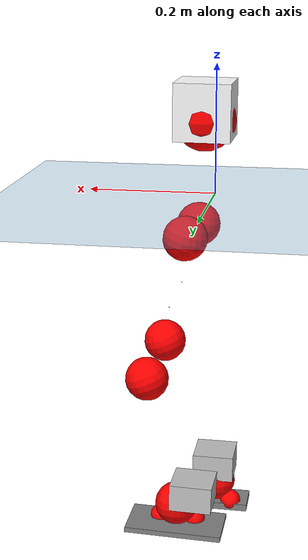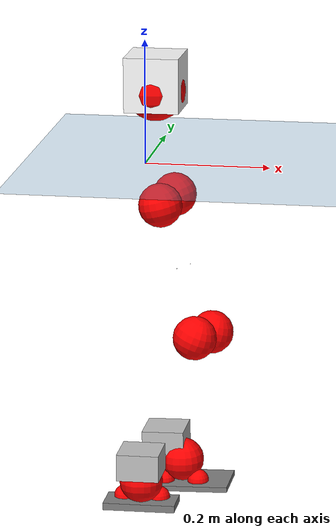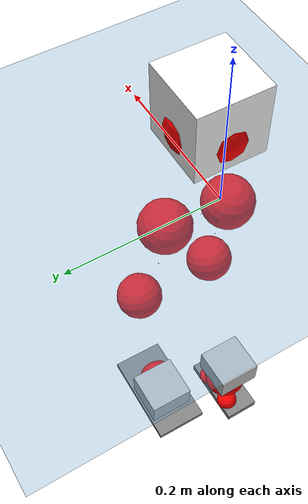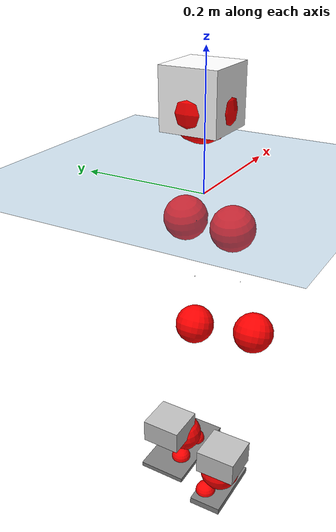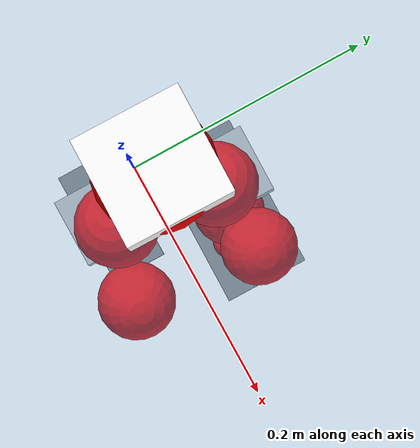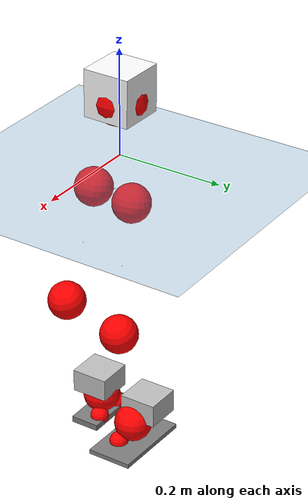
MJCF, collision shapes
<mujoco model="pi_12dof_release_v1">
  <compiler angle="radian" assetdir="assets" balanceinertia="true" inertiafromgeom="false"/>

  <option timestep="0.005" density="1.2" viscosity="2e-05"/>

  <size nkey="1"/>

  <visual>
    <quality shadowsize="8192"/>
    <map shadowclip="0.5"/>
  </visual>

  <default>
    <default class="/">
      <joint armature="0.01" damping="0.01" frictionloss="0.01"/>
      <geom contype="0" conaffinity="0" group="1" solref="-1000 -80"/>
      <site size="0.01 0.005 0.005" group="5"/>
      <general forcelimited="true" biastype="affine" gainprm="20" biasprm="0 -20 -0.5"/>
      <default class="foot">
        <geom size="0.0845 0.036 0.005" type="box" condim="6" group="4" priority="1" friction="0.9 0.2 0.2" solimp="0.015 1 0.005"/>
      </default>
      <default class="reward_collision_sphere">
        <geom group="5" rgba="1 0 0 1"/>
      </default>
    </default>
  </default>

  <asset>
    <texture type="skybox" colorspace="auto" name="//unnamed_texture_0" builtin="gradient" rgb1="0.95 0.95 0.95" rgb2="0.95 0.95 0.95" width="100" height="600"/>
    <texture type="2d" colorspace="auto" name="texplane" builtin="checker" rgb1="0.345 0.575 0.748" rgb2="0.345 0.575 0.748" markrgb="1 1 1" width="512" height="512"/>
    <material name="MatPlane" class="/" texture="texplane" texuniform="true" texrepeat="2 2" specular="0.9"/>
    <mesh name="baselink_1" class="/" file="baselink_1.STL"/>
    <mesh name="r_hip_pitch_link" class="/" file="r_hip_pitch_link.STL"/>
    <mesh name="r_hip_roll_link" class="/" file="r_hip_roll_link.STL"/>
    <mesh name="r_thigh_link" class="/" file="r_thigh_link.STL"/>
    <mesh name="r_calf_link" class="/" file="r_calf_link.STL"/>
    <mesh name="r_ankle_pitch_link" class="/" file="r_ankle_pitch_link.STL"/>
    <mesh name="r_ankle_roll_link" class="/" file="r_ankle_roll_link.STL"/>
    <mesh name="l_hip_pitch_link" class="/" file="l_hip_pitch_link.STL"/>
    <mesh name="l_hip_roll_link" class="/" file="l_hip_roll_link.STL"/>
    <mesh name="l_thigh_link" class="/" file="l_thigh_link.STL"/>
    <mesh name="l_calf_link" class="/" file="l_calf_link.STL"/>
    <mesh name="l_ankle_pitch_link" class="/" file="l_ankle_pitch_link.STL"/>
    <mesh name="l_ankle_roll_link" class="/" file="l_ankle_roll_link.STL"/>
  </asset>

  <worldbody>
    <geom name="floor" class="/" size="100 100 0.125" type="plane" group="0" material="MatPlane"/>
    <light name="toplight_shadow" class="/" pos="0 0 5" dir="0.0990148 0.0990148 -0.990148" type="directional" ambient="0.04 0.04 0.04" diffuse="0.55 0.55 0.55" specular="0.12 0.12 0.12"/>
    <light name="toplight_fill" class="/" pos="0 0 5" dir="0.0990148 0.0990148 -0.990148" type="directional" castshadow="false" ambient="0.04 0.04 0.04" diffuse="0.3 0.3 0.3" specular="0.08 0.08 0.08"/>
    <body name="trunk" pos="0.0158876 0.0116873 0.00776454" quat="0.999978 -0.00126174 -0.00285 -0.00584619">
      <inertial pos="0.0175873 0.00290882 0.0649478" quat="0.698134 0.0421816 -0.0101966 0.714651" mass="1.35804" diaginertia="0.000135359 0.00109477 0.0315152"/>
      <joint name="//unnamed_joint_0" type="free"/>
      <geom name="//unnamed_geom_1" class="/" type="mesh" density="0" rgba="1 1 1 1" mesh="baselink_1"/>
      <geom name="//unnamed_geom_2" class="/" size="0.0438445 0.0438445 0.0438445" pos="0 0 0.124371" type="box" rgba="1 1 1 1"/>
      <geom name="//unnamed_geom_3" class="reward_collision_sphere" size="0.048229" pos="0 0 0.108824"/>
      <site name="imu" class="/" pos="-0.00903444 -0.0369916 0.0308057" size="0.00876891"/>
      <camera name="track" class="/" pos="0 -1.3179 0" quat="0.707107 0.707107 0 0" mode="trackcom"/>
      <camera name="ego_camera" class="/" pos="0.0312817 0 0.279834" quat="-0.5 -0.5 0.5 0.5"/>
      <body name="r_hip_pitch_link" pos="0.0105173 -0.00454098 -0.0591639" quat="0.992078 0.00519922 -0.125375 0.0059598">
        <inertial pos="0.0171973 -0.026945 0.00917922" quat="-0.0241007 0.702644 -0.0181769 0.710901" mass="0.21521" diaginertia="1.18864e-06 1.19248e-05 0.00054479"/>
        <joint name="r_hip_pitch_joint" class="/" pos="0 0 0" axis="-0.0347715 -0.998316 -0.0464282" stiffness="0.0784119" range="-1.73876 1.11403" armature="0.00866198" damping="0.0137963" frictionloss="0.0035626"/>
        <geom name="//unnamed_geom_4" class="/" type="mesh" density="0" rgba="0.75294 0.75294 0.75294 1" mesh="r_hip_pitch_link"/>
        <geom name="//unnamed_geom_5" class="/" size="0.000438445 0.000438445 0.000438445" type="box" rgba="0.75294 0.75294 0.75294 1"/>
        <body name="r_hip_roll_link" pos="0.00136257 -0.0417202 -0.00756737" quat="1 9.27574e-05 0.000525541 0.000586052">
          <inertial pos="-0.016588 -0.00306954 -0.109161" quat="0.705341 -0.0917551 -0.0766136 0.698717" mass="0.278635" diaginertia="4.349e-06 3.16462e-05 0.0012669"/>
          <joint name="r_hip_roll_joint" class="/" pos="0 0 0" axis="-0.999998 0.00186867 -0.000878546" range="0.149424 0.3096" armature="0.0159336" damping="0.062556" frictionloss="0.00790886"/>
          <geom name="//unnamed_geom_6" class="/" type="mesh" density="0" rgba="0.75294 0.75294 0.75294 1" mesh="r_hip_roll_link"/>
          <geom name="//unnamed_geom_7" class="/" size="0.000438445 0.000438445 0.000438445" type="box" rgba="0.75294 0.75294 0.75294 1"/>
          <geom name="//unnamed_geom_8" class="reward_collision_sphere" size="0.0350756"/>
          <body name="r_thigh_link" pos="0.000940966 -0.00528328 -0.104913" quat="0.999985 -0.00478298 -0.00253951 0.00108349">
            <inertial pos="-0.0102613 -0.00868117 -0.0615883" quat="0.754258 0.653234 -0.0499483 0.043415" mass="0.0706084" diaginertia="1.72769e-06 1.04881e-05 0.000604693"/>
            <joint name="r_thigh_joint" class="/" pos="0 0 0" axis="-0.060005 -0.0237229 -0.997916" stiffness="0.0788042" range="-0.30354 0.37435" armature="0.0154579" damping="0" frictionloss="0.00989287"/>
            <geom name="//unnamed_geom_9" class="/" type="mesh" density="0" rgba="0.75294 0.75294 0.75294 1" mesh="r_thigh_link"/>
            <geom name="//unnamed_geom_10" class="/" size="0.000438445 0.000438445 0.000438445" type="box" rgba="0.75294 0.75294 0.75294 1"/>
            <body name="r_calf_link" pos="0.00149709 -0.0156023 -0.11347" quat="0.948697 0.00239364 0.316175 0.00153323">
              <inertial pos="-0.0130436 -0.0068974 -0.109703" quat="0.999982 0.00367813 -0.00186252 -0.00431952" mass="0.363842" diaginertia="4.00435e-05 0.000396384 0.00153804"/>
              <joint name="r_calf_joint" class="/" pos="0 0 0" axis="0.0035548 -0.999994 0.00011521" range="-1.59679 0.931567" armature="0.000481394" damping="0.0697462" frictionloss="0.00138703"/>
              <geom name="//unnamed_geom_11" class="/" type="mesh" density="0" rgba="0.75294 0.75294 0.75294 1" mesh="r_calf_link"/>
              <geom name="//unnamed_geom_12" class="/" size="0.000438445 0.000438445 0.000438445" type="box" rgba="0.75294 0.75294 0.75294 1"/>
              <geom name="//unnamed_geom_13" class="reward_collision_sphere" size="0.0350756"/>
              <body name="r_ankle_pitch_link" pos="-0.00240447 0.00627343 -0.232125" quat="0.981257 0.00451819 -0.192643 -0.00140525">
                <inertial pos="0.0139325 0.0189014 0.00633007" quat="0.000881259 0.720839 0.00271427 0.693096" mass="0.157013" diaginertia="4.19487e-06 3.3243e-05 0.00138367"/>
                <joint name="r_ankle_pitch_joint" class="/" pos="0 0 0" axis="0.0785033 -0.99656 -0.0265615" stiffness="0.0776423" range="-1.03383 0.247705" armature="0.0102852" damping="0.00626377" frictionloss="0.013783"/>
                <geom name="//unnamed_geom_14" class="/" type="mesh" density="0" rgba="0.75294 0.75294 0.75294 1" mesh="r_ankle_pitch_link"/>
                <geom name="//unnamed_geom_15" class="/" size="0.0341987 0.0350756 0.0219223" type="box" rgba="0.75294 0.75294 0.75294 1"/>
                <body name="r_ankle_roll_link" pos="0.0201453 0.00425264 -0.00218031" quat="1 7.87838e-05 -7.81733e-05 -2.67055e-05">
                  <inertial pos="-0.019396 0.000576369 -0.0162442" quat="0.55386 0.427707 0.423611 0.575204" mass="0.268841" diaginertia="9.81621e-06 0.00012256 0.00207936"/>
                  <joint name="r_ankle_roll_joint" class="/" pos="0 0 0" axis="-0.995973 -0.0781748 -0.0438931" range="-0.0898734 0.424088" armature="0.00724012" damping="0.0526557" frictionloss="0.0081631"/>
                  <geom name="//unnamed_geom_16" class="/" type="mesh" density="0" rgba="0.75294 0.75294 0.75294 1" mesh="r_ankle_roll_link"/>
                  <geom name="//unnamed_geom_17" class="/" type="mesh" rgba="0.75294 0.75294 0.75294 1" mesh="r_ankle_roll_link"/>
                  <geom name="right_foot" class="foot" size="0.058339 0.0278699 0.00580092" pos="-0.0212715 0 -0.0684038"/>
                  <geom name="//unnamed_geom_19" class="reward_collision_sphere" size="0.0350756" pos="-0.0208545 0 -0.0310927"/>
                  <geom name="//unnamed_geom_20" class="reward_collision_sphere" size="0.0175378" pos="0.00625634 0.013179 -0.0621853"/>
                  <geom name="//unnamed_geom_21" class="reward_collision_sphere" size="0.0175378" pos="-0.0500507 0.013179 -0.0621853"/>
                  <site name="right_foot" class="foot" pos="-0.0212715 0 -0.0684038" size="0.00876891"/>
                </body>
              </body>
            </body>
          </body>
        </body>
      </body>
      <body name="l_hip_pitch_link" pos="0.00459109 0.0106688 -0.0614133" quat="0.991187 -0.000394527 -0.132406 -0.00410508">
        <inertial pos="-0.0155667 0.0410597 -0.00369883" quat="-0.0385207 0.703543 0.02811 0.709051" mass="0.237623" diaginertia="1.58533e-06 1.07479e-05 0.000953526"/>
        <joint name="l_hip_pitch_joint" class="/" pos="0 0 0" axis="-0.00572904 0.99976 -0.0211576" stiffness="0.0354106" range="-1.44983 1.72153" armature="0.00327371" damping="0.0644816" frictionloss="0.00518828"/>
        <geom name="//unnamed_geom_22" class="/" type="mesh" density="0" rgba="0.75294 0.75294 0.75294 1" mesh="l_hip_pitch_link"/>
        <geom name="//unnamed_geom_23" class="/" size="0.000438445 0.000438445 0.000438445" type="box" rgba="0.75294 0.75294 0.75294 1"/>
        <body name="l_hip_roll_link" pos="0.0152747 0.0291832 -0.0121163" quat="0.99997 0.00632314 -0.00323018 -0.00301983">
          <inertial pos="0.000880032 0.004973 -0.0897843" quat="0.70673 -0.00628126 -0.0614627 0.70478" mass="0.304402" diaginertia="3.84393e-06 3.9723e-05 0.00105693"/>
          <joint name="l_hip_roll_joint" class="/" pos="0 0 0" axis="-0.999039 -0.0354491 -0.0257583" range="-0.36938 0.27054" armature="0.00353706" damping="0.0886066" frictionloss="0.00477029"/>
          <geom name="//unnamed_geom_24" class="/" type="mesh" density="0" rgba="0.75294 0.75294 0.75294 1" mesh="l_hip_roll_link"/>
          <geom name="//unnamed_geom_25" class="/" size="0.000438445 0.000438445 0.000438445" type="box" rgba="0.75294 0.75294 0.75294 1"/>
          <geom name="//unnamed_geom_26" class="reward_collision_sphere" size="0.0350756"/>
          <body name="l_thigh_link" pos="-0.00681564 -0.00441579 -0.116652" quat="1 0.000111123 0.000676233 -2.23807e-06">
            <inertial pos="7.62215e-05 -0.000482283 -0.0840149" quat="0.675436 0.737418 -0.000199055 -0.000151321" mass="0.0765724" diaginertia="1.57154e-06 1.13464e-05 0.000537101"/>
            <joint name="l_thigh_joint" class="/" pos="0 0 0" axis="0.0129928 -0.023971 -0.999628" range="-0.601 0.371" armature="0.0135216" damping="0" frictionloss="0.0105385"/>
            <geom name="//unnamed_geom_27" class="/" type="mesh" density="0" rgba="0.75294 0.75294 0.75294 1" mesh="l_thigh_link"/>
            <geom name="//unnamed_geom_28" class="/" size="0.000438445 0.000438445 0.000438445" type="box" rgba="0.75294 0.75294 0.75294 1"/>
            <body name="l_calf_link" pos="-0.000548606 0.01551 -0.122171" quat="0.946453 0.000756469 0.322807 0.0045964">
              <inertial pos="-0.000432478 -0.0104437 -0.11063" quat="0.997608 -0.0594711 0.00392187 -0.0350041" mass="0.563195" diaginertia="3.95394e-05 0.000383167 0.00177375"/>
              <joint name="l_calf_joint" class="/" pos="0 0 0" axis="-0.000536524 0.999997 0.002185" stiffness="0.0255516" range="-0.55471 1.57234" armature="0.0161193" damping="0.0174774" frictionloss="0.00171614"/>
              <geom name="//unnamed_geom_29" class="/" type="mesh" density="0" rgba="0.75294 0.75294 0.75294 1" mesh="l_calf_link"/>
              <geom name="//unnamed_geom_30" class="/" size="0.000438445 0.000438445 0.000438445" type="box" rgba="0.75294 0.75294 0.75294 1"/>
              <geom name="//unnamed_geom_31" class="reward_collision_sphere" size="0.0350756"/>
              <body name="l_ankle_pitch_link" pos="-0.0017328 0.00558135 -0.204258" quat="0.979753 0.00329658 -0.200171 0.00223152">
                <inertial pos="0.00141504 0.00851232 -0.00226974" quat="-0.00367932 0.706149 0.00418977 0.708041" mass="0.144261" diaginertia="4.67815e-06 3.04152e-05 0.00141108"/>
                <joint name="l_ankle_pitch_joint" class="/" pos="0 0 0" axis="0.0184417 0.999741 -0.0133681" stiffness="0.015662" range="-0.418282 1.32304" armature="0.00884276" damping="0.00656311" frictionloss="0.00516595"/>
                <geom name="//unnamed_geom_32" class="/" type="mesh" density="0" rgba="0.75294 0.75294 0.75294 1" mesh="l_ankle_pitch_link"/>
                <geom name="//unnamed_geom_33" class="/" size="0.0341987 0.0350756 0.0219223" type="box" rgba="0.75294 0.75294 0.75294 1"/>
                <body name="l_ankle_roll_link" pos="0.0493788 -0.0122558 0.00056971" quat="0.999997 -0.00129083 -0.00184684 0.000786537">
                  <inertial pos="-0.0271614 -0.000761647 -0.0322825" quat="0.539145 0.457889 0.447836 0.546904" mass="0.332485" diaginertia="1.50873e-05 0.000177363 0.00266006"/>
                  <joint name="l_ankle_roll_joint" class="/" pos="0 0 0" axis="-0.997869 0.0290759 0.0584118" stiffness="0.0512675" range="-0.0320064 0.145662" armature="0.00759269" damping="0" frictionloss="0.00620128"/>
                  <geom name="//unnamed_geom_34" class="/" type="mesh" density="0" rgba="0.75294 0.75294 0.75294 1" mesh="l_ankle_roll_link"/>
                  <geom name="//unnamed_geom_35" class="/" type="mesh" rgba="0.75294 0.75294 0.75294 1" mesh="l_ankle_roll_link"/>
                  <geom name="left_foot" class="foot" size="0.0791223 0.0426663 0.00425481" pos="-0.0212715 0 -0.0684038"/>
                  <geom name="//unnamed_geom_37" class="reward_collision_sphere" size="0.0350756" pos="-0.0208545 0 -0.0310927"/>
                  <geom name="//unnamed_geom_38" class="reward_collision_sphere" size="0.0175378" pos="0.00625634 -0.013179 -0.0621853"/>
                  <geom name="//unnamed_geom_39" class="reward_collision_sphere" size="0.0175378" pos="-0.0500507 -0.013179 -0.0621853"/>
                  <site name="left_foot" class="foot" pos="-0.0212715 0 -0.0684038" size="0.00876891"/>
                </body>
              </body>
            </body>
          </body>
        </body>
      </body>
    </body>
  </worldbody>

  <contact>
    <pair class="/" geom1="floor" geom2="right_foot" name="//unnamed_contact_1"/>
    <pair class="/" geom1="floor" geom2="left_foot" name="//unnamed_contact_0"/>
  </contact>

  <actuator>
    <general name="r_hip_pitch_joint" class="/" joint="r_hip_pitch_joint" forcerange="-22.1082 22.1082" gainprm="15.679" biasprm="0 -15.679 -0.549412"/>
    <general name="r_hip_roll_joint" class="/" joint="r_hip_roll_joint" forcerange="-18.402 18.402" gainprm="15.679" biasprm="0 -15.679 -0.549412"/>
    <general name="r_thigh_joint" class="/" joint="r_thigh_joint" forcerange="-18.7966 18.7966" gainprm="15.679" biasprm="0 -15.679 -0.549412"/>
    <general name="r_calf_joint" class="/" joint="r_calf_joint" forcerange="-21.6342 21.6342" gainprm="15.679" biasprm="0 -15.679 -0.549412"/>
    <general name="r_ankle_pitch_joint" class="/" joint="r_ankle_pitch_joint" forcerange="-14.927 14.927" gainprm="15.679" biasprm="0 -15.679 -0.549412"/>
    <general name="r_ankle_roll_joint" class="/" joint="r_ankle_roll_joint" forcerange="-21.7183 21.7183" gainprm="15.679" biasprm="0 -15.679 -0.549412"/>
    <general name="l_hip_pitch_joint" class="/" joint="l_hip_pitch_joint" forcerange="-20.2221 20.2221" gainprm="15.679" biasprm="0 -15.679 -0.549412"/>
    <general name="l_hip_roll_joint" class="/" joint="l_hip_roll_joint" forcerange="-24.9335 24.9335" gainprm="15.679" biasprm="0 -15.679 -0.549412"/>
    <general name="l_thigh_joint" class="/" joint="l_thigh_joint" forcerange="-18.9652 18.9652" gainprm="15.679" biasprm="0 -15.679 -0.549412"/>
    <general name="l_calf_joint" class="/" joint="l_calf_joint" forcerange="-6.72962 6.72962" gainprm="15.679" biasprm="0 -15.679 -0.549412"/>
    <general name="l_ankle_pitch_joint" class="/" joint="l_ankle_pitch_joint" forcerange="-18.1388 18.1388" gainprm="15.679" biasprm="0 -15.679 -0.549412"/>
    <general name="l_ankle_roll_joint" class="/" joint="l_ankle_roll_joint" forcerange="-26.9154 26.9154" gainprm="15.679" biasprm="0 -15.679 -0.549412"/>
  </actuator>

  <sensor>
    <gyro site="imu" name="imu_angular_velocity"/>
    <velocimeter site="imu" name="imu_linear_velocity"/>
    <framelinvel objtype="site" objname="left_foot" name="left_foot_global_linear_velocity"/>
    <framelinvel objtype="site" objname="right_foot" name="right_foot_global_linear_velocity"/>
  </sensor>

  <keyframe>
    <key name="home" qpos="0 0 0.291 1 0 0 0 0.4 0 0 -0.8 0.4 0 -0.4 0 0 0.8 -0.4 0"/>
  </keyframe>
</mujoco>
